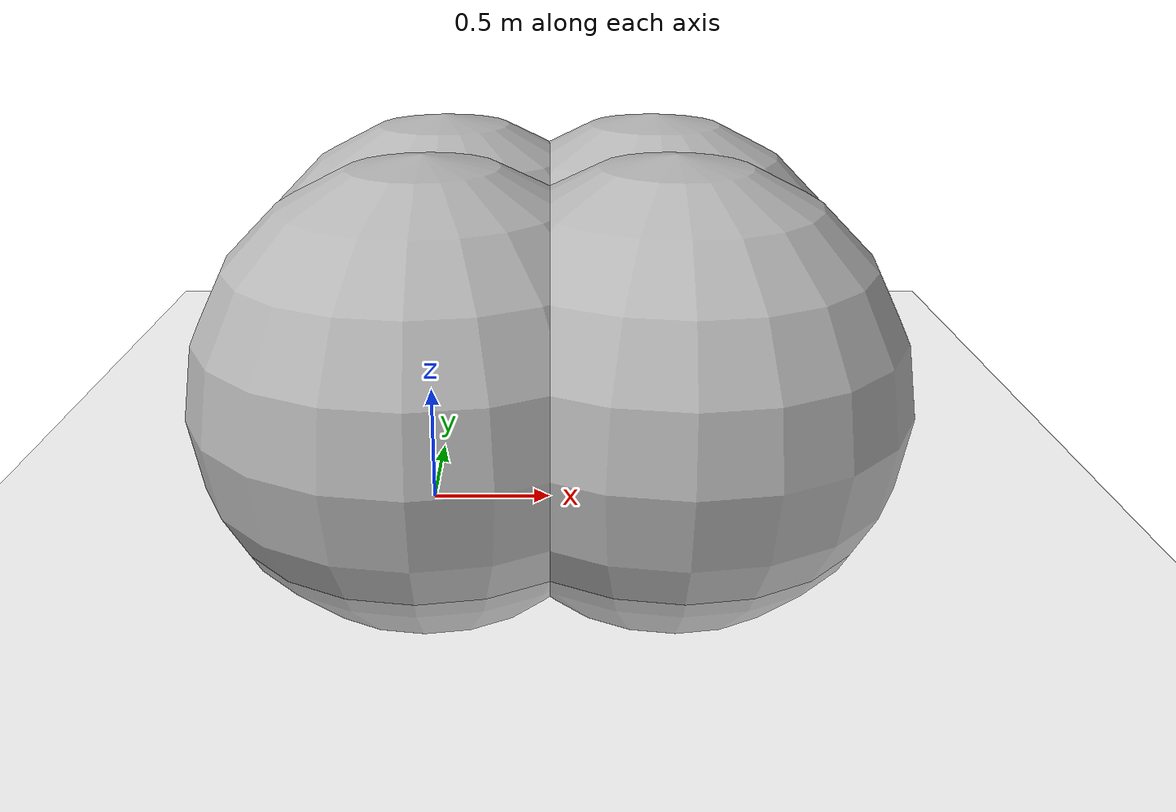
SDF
<?xml version="1.0" ?>
<sdf version="1.6">
  <world name="default">
    <model name="ground_plane">
      <static>true</static>
      <link name="link">
        <collision name="collision">
          <geometry>
            <plane>
              <normal>0 0 1</normal>
              <size>100 100</size>
            </plane>
          </geometry>
        </collision>
        <visual name="visual">
          <cast_shadows>false</cast_shadows>
          <geometry>
            <plane>
              <normal>0 0 1</normal>
              <size>100 100</size>
            </plane>
          </geometry>
        </visual>
      </link>
    </model>
    <model name="sphere">
      <link name="link0">
        <pose>0 0 0.5 0 0 0</pose>
        <collision name="sphere_collision">
          <geometry>
            <sphere><radius>1</radius></sphere>
          </geometry>
        </collision>
        <visual name="sphere_visual">
          <geometry>
            <sphere><radius>1</radius></sphere>
          </geometry>
        </visual>
        <inertial>
          <mass>0.1</mass>
        </inertial>
      </link>
      <link name="link1">
        <pose>0 1 0.5 0 0 0</pose>
        <collision name="sphere_collision">
          <geometry>
            <sphere><radius>1</radius></sphere>
          </geometry>
        </collision>
        <visual name="sphere_visual">
          <geometry>
            <sphere><radius>1</radius></sphere>
          </geometry>
        </visual>
        <inertial>
          <mass>1</mass>
        </inertial>
      </link>
      <link name="link2">
        <pose>1 0 0.5 0 0 0</pose>
        <collision name="sphere_collision">
          <geometry>
            <sphere><radius>1</radius></sphere>
          </geometry>
        </collision>
        <visual name="sphere_visual">
          <geometry>
            <sphere><radius>1</radius></sphere>
          </geometry>
        </visual>
        <inertial>
          <mass>2</mass>
        </inertial>
      </link>
      <link name="link3">
        <pose>1 1 0.5 0 0 0</pose>
        <collision name="sphere_collision">
          <geometry>
            <sphere><radius>1</radius></sphere>
          </geometry>
        </collision>
        <visual name="sphere_visual">
          <geometry>
            <sphere><radius>1</radius></sphere>
          </geometry>
        </visual>
        <inertial>
          <mass>3</mass>
        </inertial>
      </link>
    </model>
  </world>
</sdf>
